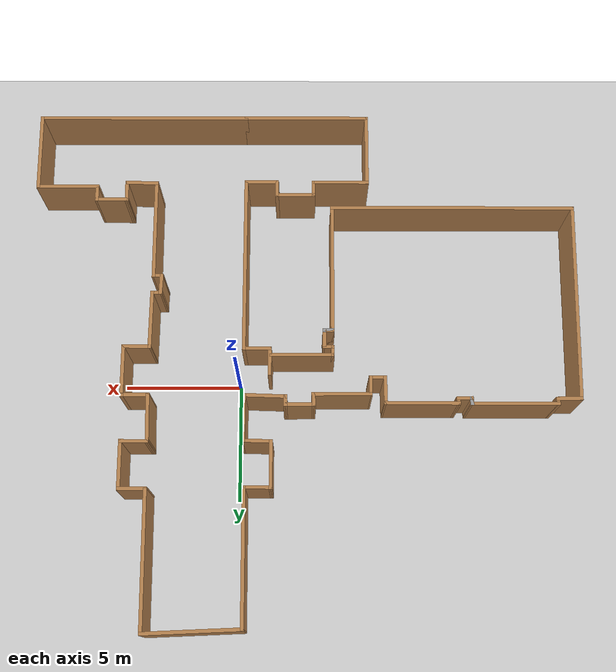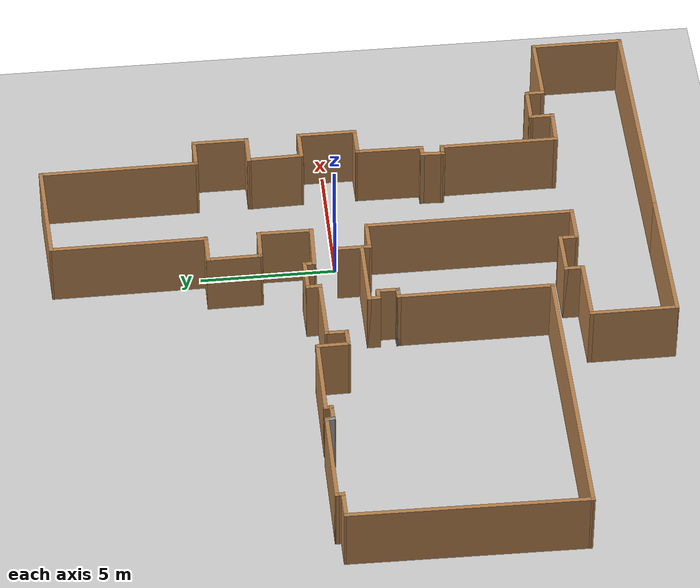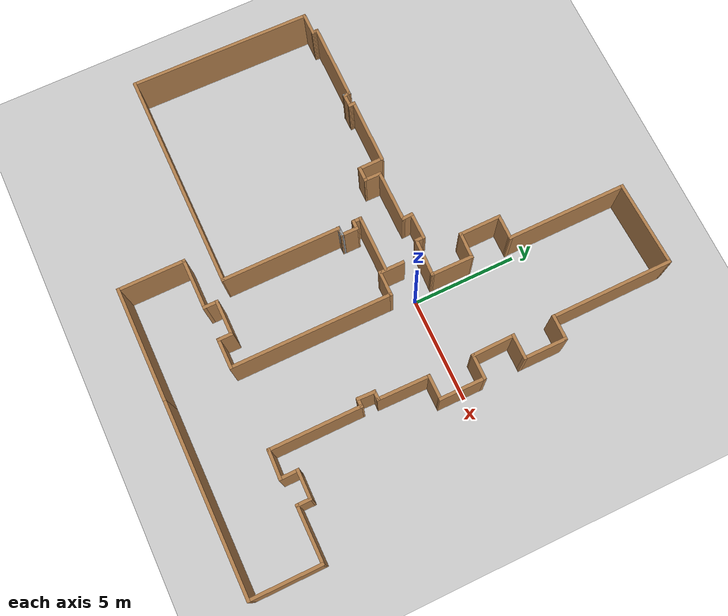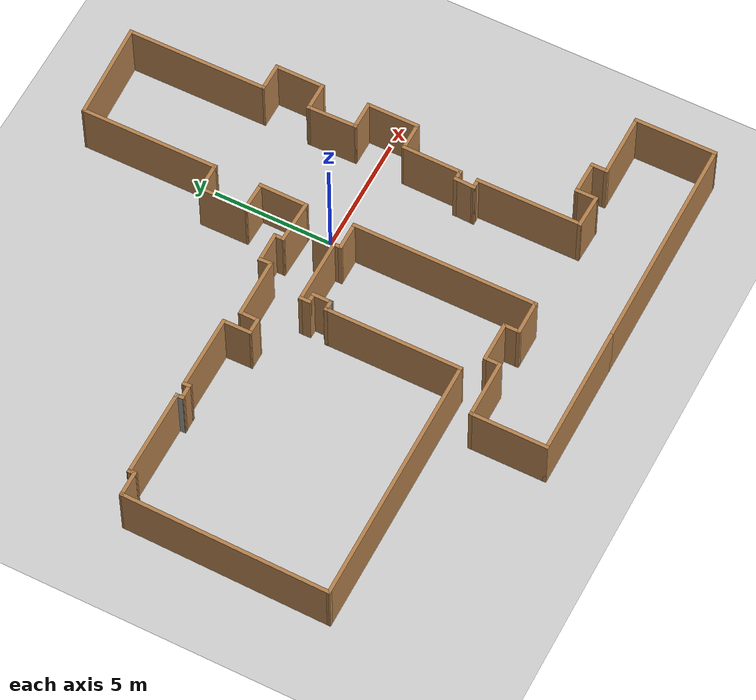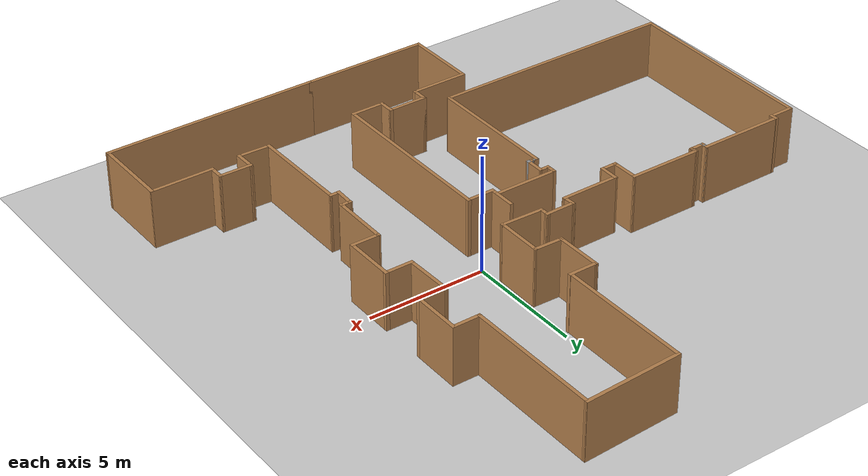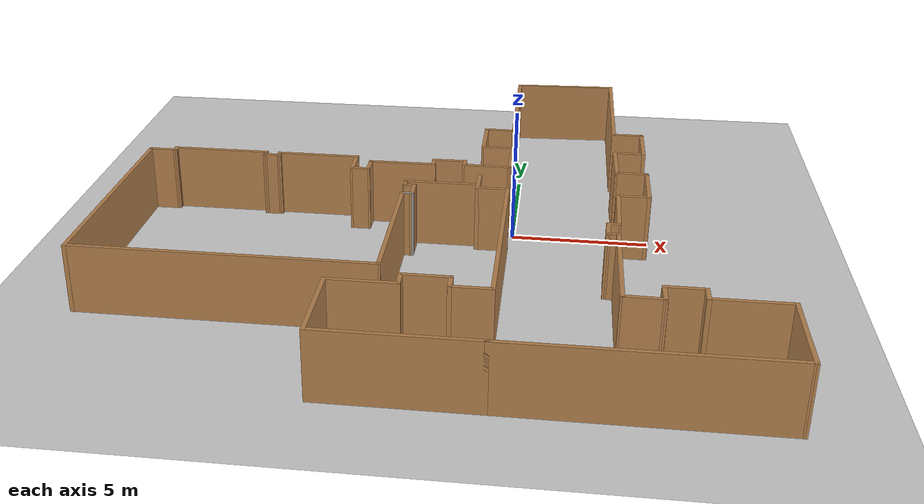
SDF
<sdf version="1.7">
 <world name="default">
  <light name="sun" type="directional">
   <pose>0 0 10 0 -0 0</pose>
   <diffuse>0.8 0.8 0.8 1</diffuse>
   <specular>0.2 0.2 0.2 1</specular>
   <attenuation>
    <range>1000</range>
    <constant>0.9</constant>
    <linear>0.01</linear>
    <quadratic>0.001</quadratic>
   </attenuation>
   <direction>-0.5 0.1 -0.9</direction>
   <spot><inner_angle>0</inner_angle><outer_angle>0</outer_angle><falloff>0</falloff></spot>
  </light>
  <model name="ground_plane">
   <static>1</static>
   <link name="link">
    <collision name="collision">
     <geometry><plane><normal>0 0 1</normal><size>100 100</size></plane></geometry>
     <surface><friction><ode><mu>100</mu><mu2>50</mu2></ode></friction></surface>
    </collision>
    <visual name="visual">
     <cast_shadows>0</cast_shadows>
     <geometry><plane><normal>0 0 1</normal><size>100 100</size></plane></geometry>
     <material>
      <script><uri>file://media/materials/scripts/gazebo.material</uri><name>Gazebo/Grey</name></script>
     </material>
    </visual>
   </link>
  </model>
  <gravity>0 0 -9.8</gravity>
  <magnetic_field>6e-06 2.3e-05 -4.2e-05</magnetic_field>
  <atmosphere type="adiabatic"/>
  <physics type="ode">
   <max_step_size>0.001</max_step_size>
   <real_time_factor>1</real_time_factor>
   <real_time_update_rate>1000</real_time_update_rate>
  </physics>
  <scene><ambient>0.4 0.4 0.4 1</ambient><background>0.7 0.7 0.7 1</background><shadows>1</shadows></scene>
  <spherical_coordinates>
   <surface_model>EARTH_WGS84</surface_model>
   <latitude_deg>0</latitude_deg>
   <longitude_deg>0</longitude_deg>
   <elevation>0</elevation>
   <heading_deg>0</heading_deg>
  </spherical_coordinates>
  <model name="F1L1">
   <pose>-2.7568 -0.603657 0 0 -0 0</pose>
   <link name="Wall_10">
    <collision name="Wall_10_Collision">
     <geometry><box><size>0.5 0.15 2.5</size></box></geometry>
     <pose>0 0 1.25 0 -0 0</pose>
    </collision>
    <visual name="Wall_10_Visual">
     <pose>0 0 1.25 0 -0 0</pose>
     <geometry><box><size>0.5 0.15 2.5</size></box></geometry>
     <material>
      <script><uri>file://media/materials/scripts/gazebo.material</uri><name>Gazebo/Wood</name></script>
      <ambient>1 1 1 1</ambient>
     </material>
     <meta><layer>0</layer></meta>
    </visual>
    <pose>-1.04137 -0.595243 0 0 -0 0</pose>
   </link>
   <link name="Wall_100">
    <collision name="Wall_100_Collision">
     <geometry><box><size>1.5 0.15 2.5</size></box></geometry>
     <pose>0 0 1.25 0 -0 0</pose>
    </collision>
    <visual name="Wall_100_Visual">
     <pose>0 0 1.25 0 -0 0</pose>
     <geometry><box><size>1.5 0.15 2.5</size></box></geometry>
     <material>
      <script><uri>file://media/materials/scripts/gazebo.material</uri><name>Gazebo/Wood</name></script>
      <ambient>1 1 1 1</ambient>
     </material>
     <meta><layer>0</layer></meta>
    </visual>
    <pose>1.86987 -8.12976 0 0 -0 3.14159</pose>
   </link>
   <link name="Wall_101">
    <collision name="Wall_101_Collision">
     <geometry><box><size>0.75 0.15 2.5</size></box></geometry>
     <pose>0 0 1.25 0 -0 0</pose>
    </collision>
    <visual name="Wall_101_Visual">
     <pose>0 0 1.25 0 -0 0</pose>
     <geometry><box><size>0.75 0.15 2.5</size></box></geometry>
     <material>
      <script><uri>file://media/materials/scripts/gazebo.material</uri><name>Gazebo/Wood</name></script>
      <ambient>1 1 1 1</ambient>
     </material>
     <meta><layer>0</layer></meta>
    </visual>
    <pose>1.19487 -7.82976 0 0 -0 1.5708</pose>
   </link>
   <link name="Wall_102">
    <collision name="Wall_102_Collision">
     <geometry><box><size>1.75 0.15 2.5</size></box></geometry>
     <pose>0 0 1.25 0 -0 0</pose>
    </collision>
    <visual name="Wall_102_Visual">
     <pose>0 0 1.25 0 -0 0</pose>
     <geometry><box><size>1.75 0.15 2.5</size></box></geometry>
     <material>
      <script><uri>file://media/materials/scripts/gazebo.material</uri><name>Gazebo/Wood</name></script>
      <ambient>1 1 1 1</ambient>
     </material>
     <meta><layer>0</layer></meta>
    </visual>
    <pose>0.394868 -7.52976 0 0 -0 3.14159</pose>
   </link>
   <link name="Wall_103">
    <collision name="Wall_103_Collision">
     <geometry><box><size>0.75 0.15 2.5</size></box></geometry>
     <pose>0 0 1.25 0 -0 0</pose>
    </collision>
    <visual name="Wall_103_Visual">
     <pose>0 0 1.25 0 -0 0</pose>
     <geometry><box><size>0.75 0.15 2.5</size></box></geometry>
     <material>
      <script><uri>file://media/materials/scripts/gazebo.material</uri><name>Gazebo/Wood</name></script>
      <ambient>1 1 1 1</ambient>
     </material>
     <meta><layer>0</layer></meta>
    </visual>
    <pose>-0.405132 -7.82976 0 0 -0 -1.5708</pose>
   </link>
   <link name="Wall_105">
    <collision name="Wall_105_Collision">
     <geometry><box><size>2.5 0.15 2.5</size></box></geometry>
     <pose>0 0 1.25 0 -0 0</pose>
    </collision>
    <visual name="Wall_105_Visual">
     <pose>0 0 1.25 0 -0 0</pose>
     <geometry><box><size>2.5 0.15 2.5</size></box></geometry>
     <material>
      <script><uri>file://media/materials/scripts/gazebo.material</uri><name>Gazebo/Wood</name></script>
      <ambient>1 1 1 1</ambient>
     </material>
     <meta><layer>0</layer></meta>
    </visual>
    <pose>-1.58013 -8.12976 0 0 -0 3.14159</pose>
   </link>
   <link name="Wall_106">
    <collision name="Wall_106_Collision">
     <geometry><box><size>3.25 0.15 2.5</size></box></geometry>
     <pose>0 0 1.25 0 -0 0</pose>
    </collision>
    <visual name="Wall_106_Visual">
     <pose>0 0 1.25 0 -0 0</pose>
     <geometry><box><size>3.25 0.15 2.5</size></box></geometry>
     <material>
      <script><uri>file://media/materials/scripts/gazebo.material</uri><name>Gazebo/Wood</name></script>
      <ambient>1 1 1 1</ambient>
     </material>
     <meta><layer>0</layer></meta>
    </visual>
    <pose>-2.75513 -9.67976 0 0 -0 -1.5708</pose>
   </link>
   <link name="Wall_107">
    <collision name="Wall_107_Collision">
     <geometry><box><size>5.5 0.15 2.5</size></box></geometry>
     <pose>0 0 1.25 0 -0 0</pose>
    </collision>
    <visual name="Wall_107_Visual">
     <pose>0 0 1.25 0 -0 0</pose>
     <geometry><box><size>5.5 0.15 2.5</size></box></geometry>
     <material>
      <script><uri>file://media/materials/scripts/gazebo.material</uri><name>Gazebo/Wood</name></script>
      <ambient>1 1 1 1</ambient>
     </material>
     <meta><layer>0</layer></meta>
    </visual>
    <pose>-0.080132 -11.2298 0 0 -0 0</pose>
   </link>
   <link name="Wall_108">
    <collision name="Wall_108_Collision">
     <geometry><box><size>9.25 0.15 2.5</size></box></geometry>
     <pose>0 0 1.25 0 -0 0</pose>
    </collision>
    <visual name="Wall_108_Visual">
     <pose>0 0 1.25 0 -0 0</pose>
     <geometry><box><size>9.25 0.15 2.5</size></box></geometry>
     <material>
      <script><uri>file://media/materials/scripts/gazebo.material</uri><name>Gazebo/Wood</name></script>
      <ambient>1 1 1 1</ambient>
     </material>
     <meta><layer>0</layer></meta>
    </visual>
    <pose>7.14487 -11.2298 0 0 -0 0</pose>
   </link>
   <link name="Wall_109">
    <collision name="Wall_109_Collision">
     <geometry><box><size>3.44929 0.15 2.5</size></box></geometry>
     <pose>0 0 1.25 0 -0 0</pose>
    </collision>
    <visual name="Wall_109_Visual">
     <pose>0 0 1.25 0 -0 0</pose>
     <geometry><box><size>3.44929 0.15 2.5</size></box></geometry>
     <material>
      <script><uri>file://media/materials/scripts/gazebo.material</uri><name>Gazebo/Wood</name></script>
      <ambient>1 1 1 1</ambient>
     </material>
     <meta><layer>0</layer></meta>
    </visual>
    <pose>11.6874 -9.58014 0 0 -0 1.57535</pose>
   </link>
   <link name="Wall_11">
    <collision name="Wall_11_Collision">
     <geometry><box><size>0.872862 0.15 2.5</size></box></geometry>
     <pose>0 0 1.25 0 -0 0</pose>
    </collision>
    <visual name="Wall_11_Visual">
     <pose>0 0 1.25 0 -0 0</pose>
     <geometry><box><size>0.872862 0.15 2.5</size></box></geometry>
     <material>
      <script><uri>file://media/materials/scripts/gazebo.material</uri><name>Gazebo/Wood</name></script>
      <ambient>1 1 1 1</ambient>
     </material>
     <meta><layer>0</layer></meta>
    </visual>
    <pose>-0.866027 -0.956673 0 0 -0 -1.56985</pose>
   </link>
   <link name="Wall_110">
    <collision name="Wall_110_Collision">
     <geometry><box><size>2.75 0.15 2.5</size></box></geometry>
     <pose>0 0 1.25 0 -0 0</pose>
    </collision>
    <visual name="Wall_110_Visual">
     <pose>0 0 1.25 0 -0 0</pose>
     <geometry><box><size>2.75 0.15 2.5</size></box></geometry>
     <material>
      <script><uri>file://media/materials/scripts/gazebo.material</uri><name>Gazebo/Wood</name></script>
      <ambient>1 1 1 1</ambient>
     </material>
     <meta><layer>0</layer></meta>
    </visual>
    <pose>10.3798 -7.91547 0 0 -0 3.14159</pose>
   </link>
   <link name="Wall_112">
    <collision name="Wall_112_Collision">
     <geometry><box><size>0.75 0.15 2.5</size></box></geometry>
     <pose>0 0 1.25 0 -0 0</pose>
    </collision>
    <visual name="Wall_112_Visual">
     <pose>0 0 1.25 0 -0 0</pose>
     <geometry><box><size>0.75 0.15 2.5</size></box></geometry>
     <material>
      <script><uri>file://media/materials/scripts/gazebo.material</uri><name>Gazebo/Wood</name></script>
      <ambient>1 1 1 1</ambient>
     </material>
     <meta><layer>0</layer></meta>
    </visual>
    <pose>9.07983 -7.61547 0 0 -0 1.5708</pose>
   </link>
   <link name="Wall_113">
    <collision name="Wall_113_Collision">
     <geometry><box><size>1.45497 0.15 2.5</size></box></geometry>
     <pose>0 0 1.25 0 -0 0</pose>
    </collision>
    <visual name="Wall_113_Visual">
     <pose>0 0 1.25 0 -0 0</pose>
     <geometry><box><size>1.45497 0.15 2.5</size></box></geometry>
     <material>
      <script><uri>file://media/materials/scripts/gazebo.material</uri><name>Gazebo/Wood</name></script>
      <ambient>1 1 1 1</ambient>
     </material>
     <meta><layer>0</layer></meta>
    </visual>
    <pose>8.42739 -7.30796 0 0 -0 3.13007</pose>
   </link>
   <link name="Wall_117">
    <collision name="Wall_117_Collision">
     <geometry><box><size>0.960605 0.15 2.5</size></box></geometry>
     <pose>0 0 1.25 0 -0 0</pose>
    </collision>
    <visual name="Wall_117_Visual">
     <pose>0 0 1.25 0 -0 0</pose>
     <geometry><box><size>0.960605 0.15 2.5</size></box></geometry>
     <material>
      <script><uri>file://media/materials/scripts/gazebo.material</uri><name>Gazebo/Wood</name></script>
      <ambient>1 1 1 1</ambient>
     </material>
     <meta><layer>0</layer></meta>
    </visual>
    <pose>7.77777 -7.70565 0 0 -0 -1.56382</pose>
   </link>
   <link name="Wall_118">
    <collision name="Wall_118_Collision">
     <geometry><box><size>1.45083 0.15 2.5</size></box></geometry>
     <pose>0 0 1.25 0 -0 0</pose>
    </collision>
    <visual name="Wall_118_Visual">
     <pose>0 0 1.25 0 -0 0</pose>
     <geometry><box><size>1.45083 0.15 2.5</size></box></geometry>
     <material>
      <script><uri>file://media/materials/scripts/gazebo.material</uri><name>Gazebo/Wood</name></script>
      <ambient>1 1 1 1</ambient>
     </material>
     <meta><layer>0</layer></meta>
    </visual>
    <pose>7.12486 -8.09032 0 0 -0 3.11</pose>
   </link>
   <link name="Wall_120">
    <collision name="Wall_120_Collision">
     <geometry><box><size>4.17044 0.15 2.5</size></box></geometry>
     <pose>0 0 1.25 0 -0 0</pose>
    </collision>
    <visual name="Wall_120_Visual">
     <pose>0 0 1.25 0 -0 0</pose>
     <geometry><box><size>4.17044 0.15 2.5</size></box></geometry>
     <material>
      <script><uri>file://media/materials/scripts/gazebo.material</uri><name>Gazebo/Wood</name></script>
      <ambient>1 1 1 1</ambient>
     </material>
     <meta><layer>0</layer></meta>
    </visual>
    <pose>4.44485 11.1399 0 0 -0 0.043311</pose>
   </link>
   <link name="Wall_13">
    <collision name="Wall_13_Collision">
     <geometry><box><size>0.507561 0.15 2.5</size></box></geometry>
     <pose>0 0 1.25 0 -0 0</pose>
    </collision>
    <visual name="Wall_13_Visual">
     <pose>0 0 1.25 0 -0 0</pose>
     <geometry><box><size>0.507561 0.15 2.5</size></box></geometry>
     <material>
      <script><uri>file://media/materials/scripts/gazebo.material</uri><name>Gazebo/Grey</name></script>
      <ambient>1 1 1 1</ambient>
     </material>
     <meta><layer>0</layer></meta>
    </visual>
    <pose>-1.04446 -1.3181 0 0 -0 0</pose>
   </link>
   <link name="Wall_14">
    <collision name="Wall_14_Collision">
     <geometry><box><size>0.15 0.15 2.5</size></box></geometry>
     <pose>0 0 1.25 0 -0 0</pose>
    </collision>
    <visual name="Wall_14_Visual">
     <pose>0 0 1.25 0 -0 0</pose>
     <geometry><box><size>0.15 0.15 2.5</size></box></geometry>
     <material>
      <script><uri>file://media/materials/scripts/gazebo.material</uri><name>Gazebo/Grey</name></script>
      <ambient>1 1 1 1</ambient>
     </material>
     <meta><layer>0</layer></meta>
    </visual>
    <pose>-0.865684 -1.3181 0 0 -0 0</pose>
   </link>
   <link name="Wall_15">
    <collision name="Wall_15_Collision">
     <geometry><box><size>0.507561 0.15 2.5</size></box></geometry>
     <pose>0 0 1.25 0 -0 0</pose>
    </collision>
    <visual name="Wall_15_Visual">
     <pose>0 0 1.25 0 -0 0</pose>
     <geometry><box><size>0.507561 0.15 2.5</size></box></geometry>
     <material>
      <script><uri>file://media/materials/scripts/gazebo.material</uri><name>Gazebo/Wood</name></script>
      <ambient>1 1 1 1</ambient>
     </material>
     <meta><layer>0</layer></meta>
    </visual>
    <pose>-1.04446 -1.3181 0 0 -0 3.14159</pose>
   </link>
   <link name="Wall_16">
    <collision name="Wall_16_Collision">
     <geometry><box><size>0.5 0.15 2.5</size></box></geometry>
     <pose>0 0 1.25 0 -0 0</pose>
    </collision>
    <visual name="Wall_16_Visual">
     <pose>0 0 1.25 0 -0 0</pose>
     <geometry><box><size>0.5 0.15 2.5</size></box></geometry>
     <material>
      <script><uri>file://media/materials/scripts/gazebo.material</uri><name>Gazebo/Wood</name></script>
      <ambient>1 1 1 1</ambient>
     </material>
     <meta><layer>0</layer></meta>
    </visual>
    <pose>-1.04068 -1.3181 0 0 -0 0</pose>
   </link>
   <link name="Wall_19">
    <collision name="Wall_19_Collision">
     <geometry><box><size>5.75 0.15 2.5</size></box></geometry>
     <pose>0 0 1.25 0 -0 0</pose>
    </collision>
    <visual name="Wall_19_Visual">
     <pose>0 0 1.25 0 -0 0</pose>
     <geometry><box><size>5.75 0.15 2.5</size></box></geometry>
     <material>
      <script><uri>file://media/materials/scripts/gazebo.material</uri><name>Gazebo/Wood</name></script>
      <ambient>1 1 1 1</ambient>
     </material>
     <meta><layer>0</layer></meta>
    </visual>
    <pose>-1.21568 -4.1181 0 0 -0 -1.5708</pose>
   </link>
   <link name="Wall_21">
    <collision name="Wall_21_Collision">
     <geometry><box><size>10.6285 0.15 2.5</size></box></geometry>
     <pose>0 0 1.25 0 -0 0</pose>
    </collision>
    <visual name="Wall_21_Visual">
     <pose>0 0 1.25 0 -0 0</pose>
     <geometry><box><size>10.6285 0.15 2.5</size></box></geometry>
     <material>
      <script><uri>file://media/materials/scripts/gazebo.material</uri><name>Gazebo/Wood</name></script>
      <ambient>1 1 1 1</ambient>
     </material>
     <meta><layer>0</layer></meta>
    </visual>
    <pose>-6.45495 -6.92058 0 0 -0 -3.14112</pose>
   </link>
   <link name="Wall_23">
    <collision name="Wall_23_Collision">
     <geometry><box><size>8.70873 0.15 2.5</size></box></geometry>
     <pose>0 0 1.25 0 -0 0</pose>
    </collision>
    <visual name="Wall_23_Visual">
     <pose>0 0 1.25 0 -0 0</pose>
     <geometry><box><size>8.70873 0.15 2.5</size></box></geometry>
     <material>
      <script><uri>file://media/materials/scripts/gazebo.material</uri><name>Gazebo/Wood</name></script>
      <ambient>1 1 1 1</ambient>
     </material>
     <meta><layer>0</layer></meta>
    </visual>
    <pose>-11.6374 -2.64653 0 0 -0 1.55751</pose>
   </link>
   <link name="Wall_24">
    <collision name="Wall_24_Collision">
     <geometry><box><size>1.12855 0.15 2.5</size></box></geometry>
     <pose>0 0 1.25 0 -0 0</pose>
    </collision>
    <visual name="Wall_24_Visual">
     <pose>0 0 1.25 0 -0 0</pose>
     <geometry><box><size>1.12855 0.15 2.5</size></box></geometry>
     <material>
      <script><uri>file://media/materials/scripts/gazebo.material</uri><name>Gazebo/Wood</name></script>
      <ambient>1 1 1 1</ambient>
     </material>
     <meta><layer>0</layer></meta>
    </visual>
    <pose>-11.0912 1.6374 0 0 -0 0.005052</pose>
   </link>
   <link name="Wall_28">
    <collision name="Wall_28_Collision">
     <geometry><box><size>0.363029 0.15 2.5</size></box></geometry>
     <pose>0 0 1.25 0 -0 0</pose>
    </collision>
    <visual name="Wall_28_Visual">
     <pose>0 0 1.25 0 -0 0</pose>
     <geometry><box><size>0.363029 0.15 2.5</size></box></geometry>
     <material>
      <script><uri>file://media/materials/scripts/gazebo.material</uri><name>Gazebo/Wood</name></script>
      <ambient>1 1 1 1</ambient>
     </material>
     <meta><layer>0</layer></meta>
    </visual>
    <pose>-10.6066 1.74629 0 0 -0 -1.52721</pose>
   </link>
   <link name="Wall_3">
    <collision name="Wall_3_Collision">
     <geometry><box><size>7.75 0.15 2.5</size></box></geometry>
     <pose>0 0 1.25 0 -0 0</pose>
    </collision>
    <visual name="Wall_3_Visual">
     <pose>0 0 1.25 0 -0 0</pose>
     <geometry><box><size>7.75 0.15 2.5</size></box></geometry>
     <material>
      <script><uri>file://media/materials/scripts/gazebo.material</uri><name>Gazebo/Wood</name></script>
      <ambient>1 1 1 1</ambient>
     </material>
     <meta><layer>0</layer></meta>
    </visual>
    <pose>2.54487 -4.32976 0 0 -0 1.5708</pose>
   </link>
   <link name="Wall_31">
    <collision name="Wall_31_Collision">
     <geometry><box><size>3.75 0.15 2.5</size></box></geometry>
     <pose>0 0 1.25 0 -0 0</pose>
    </collision>
    <visual name="Wall_31_Visual">
     <pose>0 0 1.25 0 -0 0</pose>
     <geometry><box><size>3.75 0.15 2.5</size></box></geometry>
     <material>
      <script><uri>file://media/materials/scripts/gazebo.material</uri><name>Gazebo/Wood</name></script>
      <ambient>1 1 1 1</ambient>
     </material>
     <meta><layer>0</layer></meta>
    </visual>
    <pose>-8.81313 1.85457 0 0 -0 0</pose>
   </link>
   <link name="Wall_33">
    <collision name="Wall_33_Collision">
     <geometry><box><size>0.705221 0.15 2.5</size></box></geometry>
     <pose>0 0 1.25 0 -0 0</pose>
    </collision>
    <visual name="Wall_33_Visual">
     <pose>0 0 1.25 0 -0 0</pose>
     <geometry><box><size>0.705221 0.15 2.5</size></box></geometry>
     <material>
      <script><uri>file://media/materials/scripts/gazebo.material</uri><name>Gazebo/Wood</name></script>
      <ambient>1 1 1 1</ambient>
     </material>
     <meta><layer>0</layer></meta>
    </visual>
    <pose>-6.72408 1.62892 0 0 -0 -3.12476</pose>
   </link>
   <link name="Wall_34">
    <collision name="Wall_34_Collision">
     <geometry><box><size>0.380613 0.15 2.5</size></box></geometry>
     <pose>0 0 1.25 0 -0 0</pose>
    </collision>
    <visual name="Wall_34_Visual">
     <pose>0 0 1.25 0 -0 0</pose>
     <geometry><box><size>0.380613 0.15 2.5</size></box></geometry>
     <material>
      <script><uri>file://media/materials/scripts/gazebo.material</uri><name>Gazebo/Wood</name></script>
      <ambient>1 1 1 1</ambient>
     </material>
     <meta><layer>0</layer></meta>
    </visual>
    <pose>-7.00739 1.73941 0 0 -0 1.62059</pose>
   </link>
   <link name="Wall_35">
    <collision name="Wall_35_Collision">
     <geometry><box><size>0.380528 0.15 2.5</size></box></geometry>
     <pose>0 0 1.25 0 -0 0</pose>
    </collision>
    <visual name="Wall_35_Visual">
     <pose>0 0 1.25 0 -0 0</pose>
     <geometry><box><size>0.380528 0.15 2.5</size></box></geometry>
     <material>
      <script><uri>file://media/materials/scripts/gazebo.material</uri><name>Gazebo/Grey</name></script>
      <ambient>1 1 1 1</ambient>
     </material>
     <meta><layer>0</layer></meta>
    </visual>
    <pose>-7.00833 1.73941 0 0 -0 -1.5291</pose>
   </link>
   <link name="Wall_36">
    <collision name="Wall_36_Collision">
     <geometry><box><size>0.15 0.15 2.5</size></box></geometry>
     <pose>0 0 1.25 0 -0 0</pose>
    </collision>
    <visual name="Wall_36_Visual">
     <pose>0 0 1.25 0 -0 0</pose>
     <geometry><box><size>0.15 0.15 2.5</size></box></geometry>
     <material>
      <script><uri>file://media/materials/scripts/gazebo.material</uri><name>Gazebo/Wood</name></script>
      <ambient>1 1 1 1</ambient>
     </material>
     <meta><layer>0</layer></meta>
    </visual>
    <pose>-7.00165 1.62424 0 0 -0 0</pose>
   </link>
   <link name="Wall_4">
    <collision name="Wall_4_Collision">
     <geometry><box><size>1.25 0.15 2.5</size></box></geometry>
     <pose>0 0 1.25 0 -0 0</pose>
    </collision>
    <visual name="Wall_4_Visual">
     <pose>0 0 1.25 0 -0 0</pose>
     <geometry><box><size>1.25 0.15 2.5</size></box></geometry>
     <material>
      <script><uri>file://media/materials/scripts/gazebo.material</uri><name>Gazebo/Wood</name></script>
      <ambient>1 1 1 1</ambient>
     </material>
     <meta><layer>0</layer></meta>
    </visual>
    <pose>1.99487 -0.529763 0 0 -0 3.14159</pose>
   </link>
   <link name="Wall_41">
    <collision name="Wall_41_Collision">
     <geometry><box><size>3.18921 0.15 2.5</size></box></geometry>
     <pose>0 0 1.25 0 -0 0</pose>
    </collision>
    <visual name="Wall_41_Visual">
     <pose>0 0 1.25 0 -0 0</pose>
     <geometry><box><size>3.18921 0.15 2.5</size></box></geometry>
     <material>
      <script><uri>file://media/materials/scripts/gazebo.material</uri><name>Gazebo/Wood</name></script>
      <ambient>1 1 1 1</ambient>
     </material>
     <meta><layer>0</layer></meta>
    </visual>
    <pose>-4.94105 1.83889 0 0 -0 3.13921</pose>
   </link>
   <link name="Wall_42">
    <collision name="Wall_42_Collision">
     <geometry><box><size>0.359001 0.15 2.5</size></box></geometry>
     <pose>0 0 1.25 0 -0 0</pose>
    </collision>
    <visual name="Wall_42_Visual">
     <pose>0 0 1.25 0 -0 0</pose>
     <geometry><box><size>0.359001 0.15 2.5</size></box></geometry>
     <material>
      <script><uri>file://media/materials/scripts/gazebo.material</uri><name>Gazebo/Wood</name></script>
      <ambient>1 1 1 1</ambient>
     </material>
     <meta><layer>0</layer></meta>
    </visual>
    <pose>-6.45358 1.73805 0 0 -0 -1.50322</pose>
   </link>
   <link name="Wall_5">
    <collision name="Wall_5_Collision">
     <geometry><box><size>1.25 0.15 2.5</size></box></geometry>
     <pose>0 0 1.25 0 -0 0</pose>
    </collision>
    <visual name="Wall_5_Visual">
     <pose>0 0 1.25 0 -0 0</pose>
     <geometry><box><size>1.25 0.15 2.5</size></box></geometry>
     <material>
      <script><uri>file://media/materials/scripts/gazebo.material</uri><name>Gazebo/Wood</name></script>
      <ambient>1 1 1 1</ambient>
     </material>
     <meta><layer>0</layer></meta>
    </visual>
    <pose>1.44487 0.020237 0 0 -0 1.5708</pose>
   </link>
   <link name="Wall_51">
    <collision name="Wall_51_Collision">
     <geometry><box><size>1.25496 0.15 2.5</size></box></geometry>
     <pose>0 0 1.25 0 -0 0</pose>
    </collision>
    <visual name="Wall_51_Visual">
     <pose>0 0 1.25 0 -0 0</pose>
     <geometry><box><size>1.25496 0.15 2.5</size></box></geometry>
     <material>
      <script><uri>file://media/materials/scripts/gazebo.material</uri><name>Gazebo/Wood</name></script>
      <ambient>1 1 1 1</ambient>
     </material>
     <meta><layer>0</layer></meta>
    </visual>
    <pose>-3.41318 1.28285 0 0 -0 1.58577</pose>
   </link>
   <link name="Wall_55">
    <collision name="Wall_55_Collision">
     <geometry><box><size>0.75 0.15 2.5</size></box></geometry>
     <pose>0 0 1.25 0 -0 0</pose>
    </collision>
    <visual name="Wall_55_Visual">
     <pose>0 0 1.25 0 -0 0</pose>
     <geometry><box><size>0.75 0.15 2.5</size></box></geometry>
     <material>
      <script><uri>file://media/materials/scripts/gazebo.material</uri><name>Gazebo/Wood</name></script>
      <ambient>1 1 1 1</ambient>
     </material>
     <meta><layer>0</layer></meta>
    </visual>
    <pose>-3.10491 0.730434 0 0 -0 0</pose>
   </link>
   <link name="Wall_56">
    <collision name="Wall_56_Collision">
     <geometry><box><size>0.865465 0.15 2.5</size></box></geometry>
     <pose>0 0 1.25 0 -0 0</pose>
    </collision>
    <visual name="Wall_56_Visual">
     <pose>0 0 1.25 0 -0 0</pose>
     <geometry><box><size>0.865465 0.15 2.5</size></box></geometry>
     <material>
      <script><uri>file://media/materials/scripts/gazebo.material</uri><name>Gazebo/Wood</name></script>
      <ambient>1 1 1 1</ambient>
     </material>
     <meta><layer>0</layer></meta>
    </visual>
    <pose>-2.80064 1.08814 0 0 -0 1.55885</pose>
   </link>
   <link name="Wall_57">
    <collision name="Wall_57_Collision">
     <geometry><box><size>2.55136 0.15 2.5</size></box></geometry>
     <pose>0 0 1.25 0 -0 0</pose>
    </collision>
    <visual name="Wall_57_Visual">
     <pose>0 0 1.25 0 -0 0</pose>
     <geometry><box><size>2.55136 0.15 2.5</size></box></geometry>
     <material>
      <script><uri>file://media/materials/scripts/gazebo.material</uri><name>Gazebo/Wood</name></script>
      <ambient>1 1 1 1</ambient>
     </material>
     <meta><layer>0</layer></meta>
    </visual>
    <pose>-1.59571 1.4544 0 0 -0 0.00712</pose>
   </link>
   <link name="Wall_59">
    <collision name="Wall_59_Collision">
     <geometry><box><size>0.582697 0.15 2.5</size></box></geometry>
     <pose>0 0 1.25 0 -0 0</pose>
    </collision>
    <visual name="Wall_59_Visual">
     <pose>0 0 1.25 0 -0 0</pose>
     <geometry><box><size>0.582697 0.15 2.5</size></box></geometry>
     <material>
      <script><uri>file://media/materials/scripts/gazebo.material</uri><name>Gazebo/Wood</name></script>
      <ambient>1 1 1 1</ambient>
     </material>
     <meta><layer>0</layer></meta>
    </visual>
    <pose>-0.404658 1.68344 0 0 -0 -1.52647</pose>
   </link>
   <link name="Wall_62">
    <collision name="Wall_62_Collision">
     <geometry><box><size>1.33922 0.15 2.5</size></box></geometry>
     <pose>0 0 1.25 0 -0 0</pose>
    </collision>
    <visual name="Wall_62_Visual">
     <pose>0 0 1.25 0 -0 0</pose>
     <geometry><box><size>1.33922 0.15 2.5</size></box></geometry>
     <material>
      <script><uri>file://media/materials/scripts/gazebo.material</uri><name>Gazebo/Wood</name></script>
      <ambient>1 1 1 1</ambient>
     </material>
     <meta><layer>0</layer></meta>
    </visual>
    <pose>0.184604 1.90562 0 0 -0 -3.13156</pose>
   </link>
   <link name="Wall_64">
    <collision name="Wall_64_Collision">
     <geometry><box><size>0.5 0.15 2.5</size></box></geometry>
     <pose>0 0 1.25 0 -0 0</pose>
    </collision>
    <visual name="Wall_64_Visual">
     <pose>0 0 1.25 0 -0 0</pose>
     <geometry><box><size>0.5 0.15 2.5</size></box></geometry>
     <material>
      <script><uri>file://media/materials/scripts/gazebo.material</uri><name>Gazebo/Wood</name></script>
      <ambient>1 1 1 1</ambient>
     </material>
     <meta><layer>0</layer></meta>
    </visual>
    <pose>0.779182 1.73659 0 0 -0 -1.5708</pose>
   </link>
   <link name="Wall_66">
    <collision name="Wall_66_Collision">
     <geometry><box><size>1.87272 0.15 2.5</size></box></geometry>
     <pose>0 0 1.25 0 -0 0</pose>
    </collision>
    <visual name="Wall_66_Visual">
     <pose>0 0 1.25 0 -0 0</pose>
     <geometry><box><size>1.87272 0.15 2.5</size></box></geometry>
     <material>
      <script><uri>file://media/materials/scripts/gazebo.material</uri><name>Gazebo/Wood</name></script>
      <ambient>1 1 1 1</ambient>
     </material>
     <meta><layer>0</layer></meta>
    </visual>
    <pose>1.6401 1.53399 0 0 -0 3.10955</pose>
   </link>
   <link name="Wall_68">
    <collision name="Wall_68_Collision">
     <geometry><box><size>2.08177 0.15 2.5</size></box></geometry>
     <pose>0 0 1.25 0 -0 0</pose>
    </collision>
    <visual name="Wall_68_Visual">
     <pose>0 0 1.25 0 -0 0</pose>
     <geometry><box><size>2.08177 0.15 2.5</size></box></geometry>
     <material>
      <script><uri>file://media/materials/scripts/gazebo.material</uri><name>Gazebo/Wood</name></script>
      <ambient>1 1 1 1</ambient>
     </material>
     <meta><layer>0</layer></meta>
    </visual>
    <pose>2.50706 2.47226 0 0 -0 -1.57704</pose>
   </link>
   <link name="Wall_7">
    <collision name="Wall_7_Collision">
     <geometry><box><size>2.75 0.15 2.5</size></box></geometry>
     <pose>0 0 1.25 0 -0 0</pose>
    </collision>
    <visual name="Wall_7_Visual">
     <pose>0 0 1.25 0 -0 0</pose>
     <geometry><box><size>2.75 0.15 2.5</size></box></geometry>
     <material>
      <script><uri>file://media/materials/scripts/gazebo.material</uri><name>Gazebo/Wood</name></script>
      <ambient>1 1 1 1</ambient>
     </material>
     <meta><layer>0</layer></meta>
    </visual>
    <pose>0.08363 -0.245243 0 0 -0 0</pose>
   </link>
   <link name="Wall_70">
    <collision name="Wall_70_Collision">
     <geometry><box><size>1.29716 0.15 2.5</size></box></geometry>
     <pose>0 0 1.25 0 -0 0</pose>
    </collision>
    <visual name="Wall_70_Visual">
     <pose>0 0 1.25 0 -0 0</pose>
     <geometry><box><size>1.29716 0.15 2.5</size></box></geometry>
     <material>
      <script><uri>file://media/materials/scripts/gazebo.material</uri><name>Gazebo/Wood</name></script>
      <ambient>1 1 1 1</ambient>
     </material>
     <meta><layer>0</layer></meta>
    </visual>
    <pose>1.93975 3.45488 0 0 -0 -0.029214</pose>
   </link>
   <link name="Wall_72">
    <collision name="Wall_72_Collision">
     <geometry><box><size>2.06394 0.15 2.5</size></box></geometry>
     <pose>0 0 1.25 0 -0 0</pose>
    </collision>
    <visual name="Wall_72_Visual">
     <pose>0 0 1.25 0 -0 0</pose>
     <geometry><box><size>2.06394 0.15 2.5</size></box></geometry>
     <material>
      <script><uri>file://media/materials/scripts/gazebo.material</uri><name>Gazebo/Wood</name></script>
      <ambient>1 1 1 1</ambient>
     </material>
     <meta><layer>0</layer></meta>
    </visual>
    <pose>1.36082 4.4286 0 0 -0 -1.56495</pose>
   </link>
   <link name="Wall_74">
    <collision name="Wall_74_Collision">
     <geometry><box><size>1.25 0.15 2.5</size></box></geometry>
     <pose>0 0 1.25 0 -0 0</pose>
    </collision>
    <visual name="Wall_74_Visual">
     <pose>0 0 1.25 0 -0 0</pose>
     <geometry><box><size>1.25 0.15 2.5</size></box></geometry>
     <material>
      <script><uri>file://media/materials/scripts/gazebo.material</uri><name>Gazebo/Wood</name></script>
      <ambient>1 1 1 1</ambient>
     </material>
     <meta><layer>0</layer></meta>
    </visual>
    <pose>1.9183 5.38557 0 0 -0 0</pose>
   </link>
   <link name="Wall_78">
    <collision name="Wall_78_Collision">
     <geometry><box><size>5.80236 0.15 2.5</size></box></geometry>
     <pose>0 0 1.25 0 -0 0</pose>
    </collision>
    <visual name="Wall_78_Visual">
     <pose>0 0 1.25 0 -0 0</pose>
     <geometry><box><size>5.80236 0.15 2.5</size></box></geometry>
     <material>
      <script><uri>file://media/materials/scripts/gazebo.material</uri><name>Gazebo/Wood</name></script>
      <ambient>1 1 1 1</ambient>
     </material>
     <meta><layer>0</layer></meta>
    </visual>
    <pose>2.44587 8.21173 0 0 -0 1.57411</pose>
   </link>
   <link name="Wall_80">
    <collision name="Wall_80_Collision">
     <geometry><box><size>4.44872 0.15 2.5</size></box></geometry>
     <pose>0 0 1.25 0 -0 0</pose>
    </collision>
    <visual name="Wall_80_Visual">
     <pose>0 0 1.25 0 -0 0</pose>
     <geometry><box><size>4.44872 0.15 2.5</size></box></geometry>
     <material>
      <script><uri>file://media/materials/scripts/gazebo.material</uri><name>Gazebo/Wood</name></script>
      <ambient>1 1 1 1</ambient>
     </material>
     <meta><layer>0</layer></meta>
    </visual>
    <pose>6.47427 -5.92042 0 0 -0 1.57366</pose>
   </link>
   <link name="Wall_81">
    <collision name="Wall_81_Collision">
     <geometry><box><size>0.5 0.15 2.5</size></box></geometry>
     <pose>0 0 1.25 0 -0 0</pose>
    </collision>
    <visual name="Wall_81_Visual">
     <pose>0 0 1.25 0 -0 0</pose>
     <geometry><box><size>0.5 0.15 2.5</size></box></geometry>
     <material>
      <script><uri>file://media/materials/scripts/gazebo.material</uri><name>Gazebo/Wood</name></script>
      <ambient>1 1 1 1</ambient>
     </material>
     <meta><layer>0</layer></meta>
    </visual>
    <pose>6.29313 -3.77107 0 0 -0 3.14159</pose>
   </link>
   <link name="Wall_83">
    <collision name="Wall_83_Collision">
     <geometry><box><size>0.921154 0.15 2.5</size></box></geometry>
     <pose>0 0 1.25 0 -0 0</pose>
    </collision>
    <visual name="Wall_83_Visual">
     <pose>0 0 1.25 0 -0 0</pose>
     <geometry><box><size>0.921154 0.15 2.5</size></box></geometry>
     <material>
      <script><uri>file://media/materials/scripts/gazebo.material</uri><name>Gazebo/Wood</name></script>
      <ambient>1 1 1 1</ambient>
     </material>
     <meta><layer>0</layer></meta>
    </visual>
    <pose>6.13296 -3.38562 0 0 -0 1.53234</pose>
   </link>
   <link name="Wall_84">
    <collision name="Wall_84_Collision">
     <geometry><box><size>0.5 0.15 2.5</size></box></geometry>
     <pose>0 0 1.25 0 -0 0</pose>
    </collision>
    <visual name="Wall_84_Visual">
     <pose>0 0 1.25 0 -0 0</pose>
     <geometry><box><size>0.5 0.15 2.5</size></box></geometry>
     <material>
      <script><uri>file://media/materials/scripts/gazebo.material</uri><name>Gazebo/Wood</name></script>
      <ambient>1 1 1 1</ambient>
     </material>
     <meta><layer>0</layer></meta>
    </visual>
    <pose>6.3129 -3.00017 0 0 -0 0</pose>
   </link>
   <link name="Wall_85">
    <collision name="Wall_85_Collision">
     <geometry><box><size>2.54962 0.15 2.5</size></box></geometry>
     <pose>0 0 1.25 0 -0 0</pose>
    </collision>
    <visual name="Wall_85_Visual">
     <pose>0 0 1.25 0 -0 0</pose>
     <geometry><box><size>2.54962 0.15 2.5</size></box></geometry>
     <material>
      <script><uri>file://media/materials/scripts/gazebo.material</uri><name>Gazebo/Wood</name></script>
      <ambient>1 1 1 1</ambient>
     </material>
     <meta><layer>0</layer></meta>
    </visual>
    <pose>6.51262 -1.80045 0 0 -0 1.55844</pose>
   </link>
   <link name="Wall_86">
    <collision name="Wall_86_Collision">
     <geometry><box><size>1.25 0.15 2.5</size></box></geometry>
     <pose>0 0 1.25 0 -0 0</pose>
    </collision>
    <visual name="Wall_86_Visual">
     <pose>0 0 1.25 0 -0 0</pose>
     <geometry><box><size>1.25 0.15 2.5</size></box></geometry>
     <material>
      <script><uri>file://media/materials/scripts/gazebo.material</uri><name>Gazebo/Wood</name></script>
      <ambient>1 1 1 1</ambient>
     </material>
     <meta><layer>0</layer></meta>
    </visual>
    <pose>7.07745 -0.600729 0 0 -0 0</pose>
   </link>
   <link name="Wall_87">
    <collision name="Wall_87_Collision">
     <geometry><box><size>2.25 0.15 2.5</size></box></geometry>
     <pose>0 0 1.25 0 -0 0</pose>
    </collision>
    <visual name="Wall_87_Visual">
     <pose>0 0 1.25 0 -0 0</pose>
     <geometry><box><size>2.25 0.15 2.5</size></box></geometry>
     <material>
      <script><uri>file://media/materials/scripts/gazebo.material</uri><name>Gazebo/Wood</name></script>
      <ambient>1 1 1 1</ambient>
     </material>
     <meta><layer>0</layer></meta>
    </visual>
    <pose>7.62745 0.449271 0 0 -0 1.5708</pose>
   </link>
   <link name="Wall_88">
    <collision name="Wall_88_Collision">
     <geometry><box><size>1.25 0.15 2.5</size></box></geometry>
     <pose>0 0 1.25 0 -0 0</pose>
    </collision>
    <visual name="Wall_88_Visual">
     <pose>0 0 1.25 0 -0 0</pose>
     <geometry><box><size>1.25 0.15 2.5</size></box></geometry>
     <material>
      <script><uri>file://media/materials/scripts/gazebo.material</uri><name>Gazebo/Wood</name></script>
      <ambient>1 1 1 1</ambient>
     </material>
     <meta><layer>0</layer></meta>
    </visual>
    <pose>7.07745 1.49927 0 0 -0 3.14159</pose>
   </link>
   <link name="Wall_9">
    <collision name="Wall_9_Collision">
     <geometry><box><size>0.5 0.15 2.5</size></box></geometry>
     <pose>0 0 1.25 0 -0 0</pose>
    </collision>
    <visual name="Wall_9_Visual">
     <pose>0 0 1.25 0 -0 0</pose>
     <geometry><box><size>0.5 0.15 2.5</size></box></geometry>
     <material>
      <script><uri>file://media/materials/scripts/gazebo.material</uri><name>Gazebo/Wood</name></script>
      <ambient>1 1 1 1</ambient>
     </material>
     <meta><layer>0</layer></meta>
    </visual>
    <pose>-1.21637 -0.420243 0 0 -0 -1.5708</pose>
   </link>
   <link name="Wall_90">
    <collision name="Wall_90_Collision">
     <geometry><box><size>2.1221 0.15 2.5</size></box></geometry>
     <pose>0 0 1.25 0 -0 0</pose>
    </collision>
    <visual name="Wall_90_Visual">
     <pose>0 0 1.25 0 -0 0</pose>
     <geometry><box><size>2.1221 0.15 2.5</size></box></geometry>
     <material>
      <script><uri>file://media/materials/scripts/gazebo.material</uri><name>Gazebo/Wood</name></script>
      <ambient>1 1 1 1</ambient>
     </material>
     <meta><layer>0</layer></meta>
    </visual>
    <pose>6.50621 2.48509 0 0 -0 -1.54925</pose>
   </link>
   <link name="Wall_92">
    <collision name="Wall_92_Collision">
     <geometry><box><size>1.25 0.15 2.5</size></box></geometry>
     <pose>0 0 1.25 0 -0 0</pose>
    </collision>
    <visual name="Wall_92_Visual">
     <pose>0 0 1.25 0 -0 0</pose>
     <geometry><box><size>1.25 0.15 2.5</size></box></geometry>
     <material>
      <script><uri>file://media/materials/scripts/gazebo.material</uri><name>Gazebo/Wood</name></script>
      <ambient>1 1 1 1</ambient>
     </material>
     <meta><layer>0</layer></meta>
    </visual>
    <pose>7.03497 3.47091 0 0 -0 0</pose>
   </link>
   <link name="Wall_95">
    <collision name="Wall_95_Collision">
     <geometry><box><size>1.25 0.15 2.5</size></box></geometry>
     <pose>0 0 1.25 0 -0 0</pose>
    </collision>
    <visual name="Wall_95_Visual">
     <pose>0 0 1.25 0 -0 0</pose>
     <geometry><box><size>1.25 0.15 2.5</size></box></geometry>
     <material>
      <script><uri>file://media/materials/scripts/gazebo.material</uri><name>Gazebo/Wood</name></script>
      <ambient>1 1 1 1</ambient>
     </material>
     <meta><layer>0</layer></meta>
    </visual>
    <pose>7.03497 5.4454 0 0 -0 0</pose>
   </link>
   <link name="Wall_96">
    <collision name="Wall_96_Collision">
     <geometry><box><size>2.12449 0.15 2.5</size></box></geometry>
     <pose>0 0 1.25 0 -0 0</pose>
    </collision>
    <visual name="Wall_96_Visual">
     <pose>0 0 1.25 0 -0 0</pose>
     <geometry><box><size>2.12449 0.15 2.5</size></box></geometry>
     <material>
      <script><uri>file://media/materials/scripts/gazebo.material</uri><name>Gazebo/Wood</name></script>
      <ambient>1 1 1 1</ambient>
     </material>
     <meta><layer>0</layer></meta>
    </visual>
    <pose>7.58497 4.45815 0 0 -0 -1.5708</pose>
   </link>
   <link name="Wall_98">
    <collision name="Wall_98_Collision">
     <geometry><box><size>5.90359 0.15 2.5</size></box></geometry>
     <pose>0 0 1.25 0 -0 0</pose>
    </collision>
    <visual name="Wall_98_Visual">
     <pose>0 0 1.25 0 -0 0</pose>
     <geometry><box><size>5.90359 0.15 2.5</size></box></geometry>
     <material>
      <script><uri>file://media/materials/scripts/gazebo.material</uri><name>Gazebo/Wood</name></script>
      <ambient>1 1 1 1</ambient>
     </material>
     <meta><layer>0</layer></meta>
    </visual>
    <pose>6.46908 8.33522 0 0 -0 -1.56527</pose>
   </link>
   <static>1</static>
  </model>
 </world>
</sdf>
